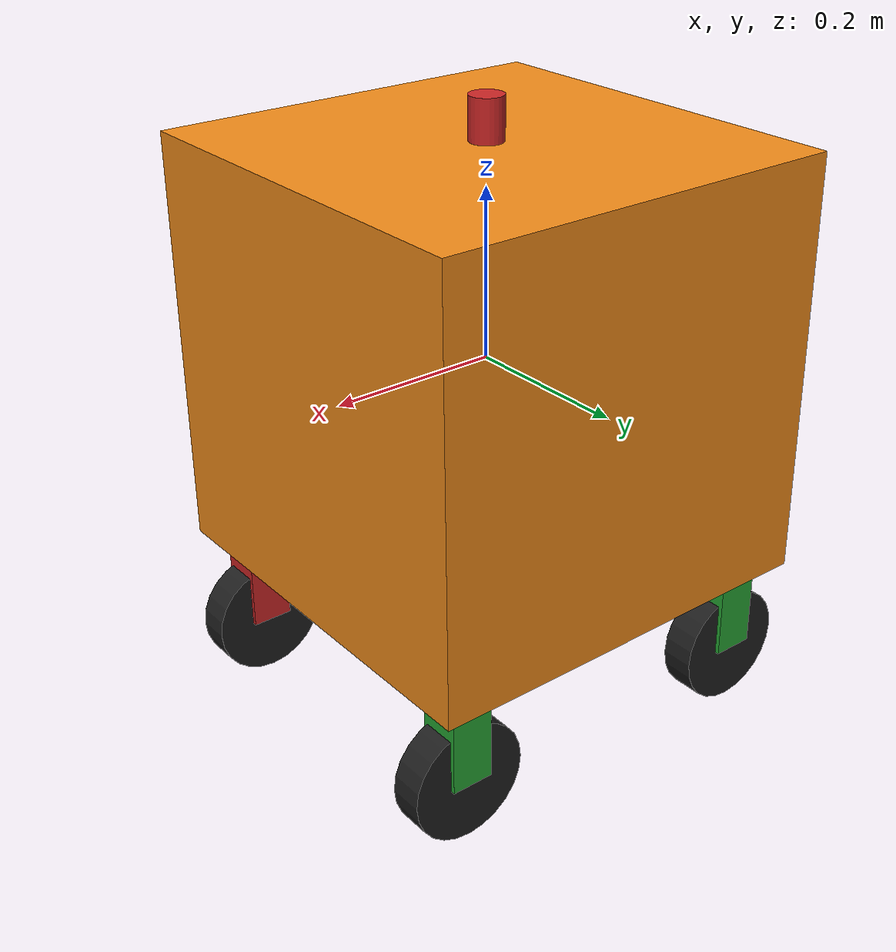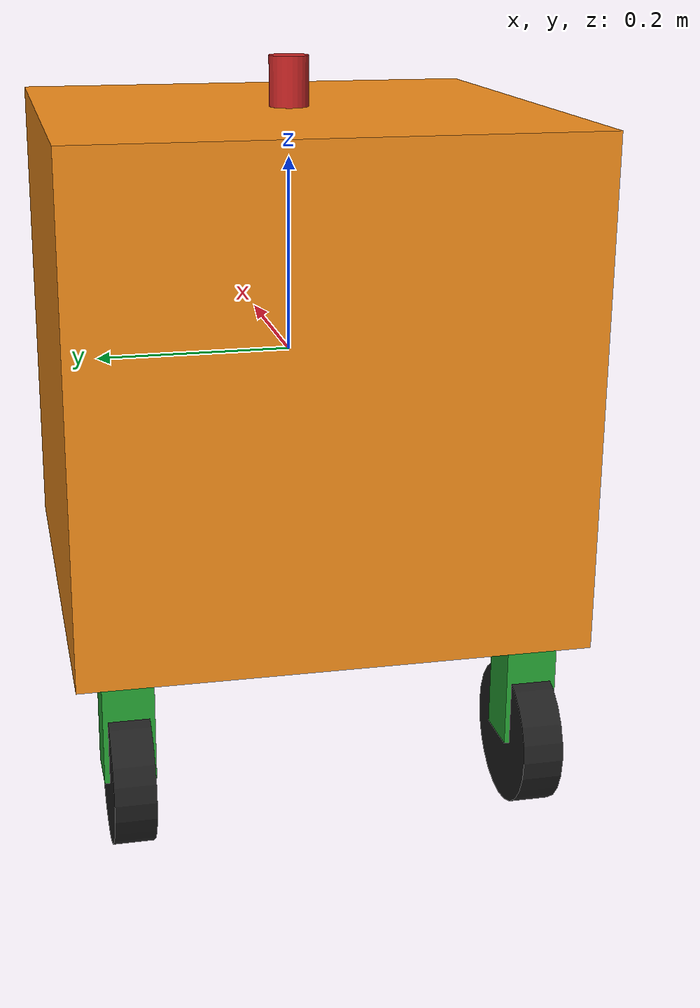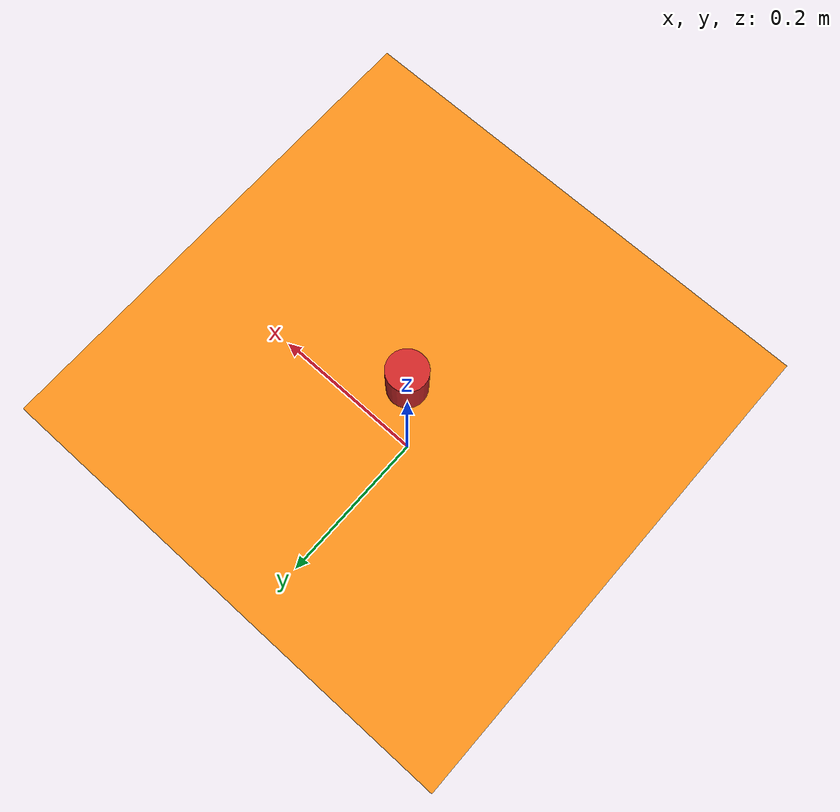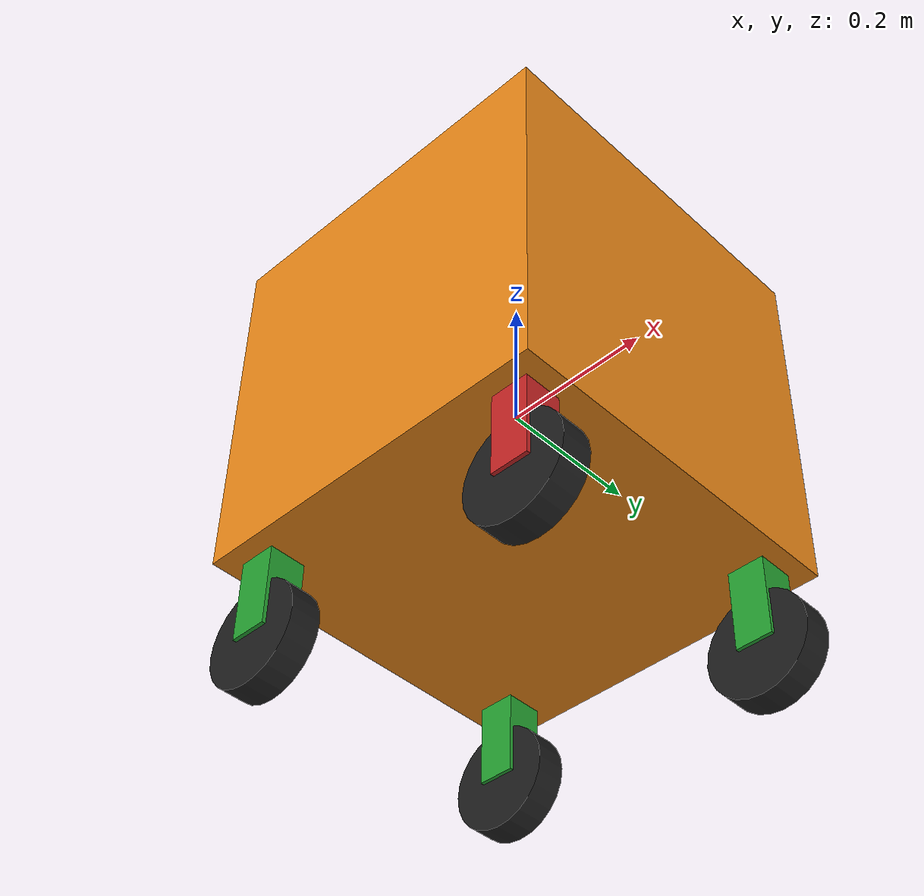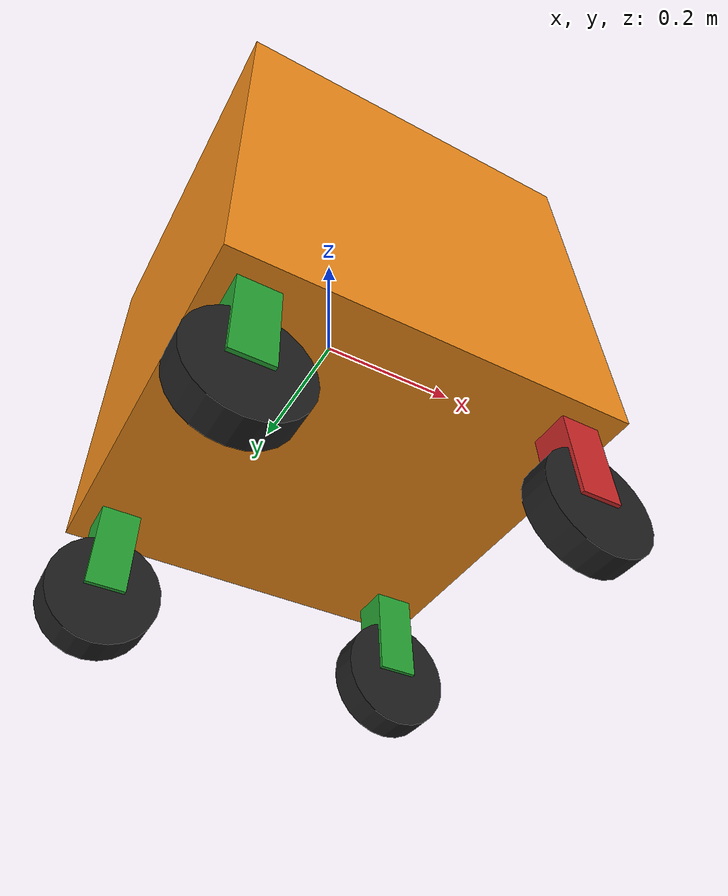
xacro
<?xml version="1.0"?>
<robot name="box_robot" xmlns:xacro="http://www.ros.org/wiki/xacro">

  <xacro:include filename="$(find homewhere)/urdf/color.rviz.xacro" />
  <xacro:include filename="$(find homewhere)/urdf/color.gazebo.xacro" />
  <xacro:include filename="$(find homewhere)/urdf/plugin.xacro" />

  <!-- 0) Properties      -->

  <xacro:property name="base_mass" value="20.0" />
  <xacro:property name="base_size" value="0.5 0.5 0.5" />

  <xacro:property name="steer_mass" value="2.5" />
  <xacro:property name="steer_size" value="0.05 0.05 0.22" />
  <!-- z of steer is 0.1 + radius of wheel -->

  <xacro:property name="wheel_mass" value="2.0" />
  <xacro:property name="wheel_radius" value="0.07" />
  <xacro:property name="wheel_length" value="0.04" />

  <link name="base_link"></link>
  <link name="base_footprint" />
  <joint name="base_joint" type="fixed">
    <parent link="base_footprint" />
    <child link="base_link" />
    <origin xyz="0 0 0" rpy="0 0 0" />
  </joint>

  <!-- 1) Base Link       -->

  <link name="body">
    <visual>
      <geometry>
        <box size="${base_size}" />
      </geometry>
      <material name="orange" />
    </visual>

    <collision>
      <geometry>
        <box size="${base_size}" />
      </geometry>
    </collision>

    <inertial>
      <mass value="${base_mass}" />
      <origin xyz="0 0 0" />
      <inertia
        ixx="0.833" ixy="0.0" ixz="0.0"
        iyy="0.833" iyz="0.0"
        izz="0.833" />
    </inertial>
  </link>

  <joint name="base_to_body" type="fixed">
    <parent link="base_link" />
    <child link="body" />
    <origin xyz="0 0 0" />
  </joint>

  <!-- 2) Wheel       -->

  <xacro:macro name="steering_wheel" params="name color:='green' x y">

    <!-- roll = 1.57 to rotate the wheel upright-->
    <link name="wheel_${name}">
      <visual>
        <geometry>
          <cylinder length="${wheel_length}" radius="${wheel_radius}" />
        </geometry>
        <origin xyz="0 0 0" rpy="1.57 0 0" />
        <material name="black" />
      </visual>

      <collision>
        <geometry>
          <cylinder length="${wheel_length}" radius="${wheel_radius}" />
        </geometry>
        <origin xyz="0 0 0" rpy="1.57 0 0" />
      </collision>

      <inertial>
        <mass value="${wheel_mass}" />
        <origin xyz="0 0 0" />
        <inertia
          ixx="0.0027" ixy="0.0" ixz="0.0"
          iyy="0.0049" iyz="0.0"
          izz="0.0027" />
      </inertial>
    </link>

    <link name="steer_${name}">
      <visual>
        <geometry>
          <box size="${steer_size}" />
        </geometry>
        <origin xyz="0 0 0" rpy="0 0 0" />
        <material name="${color}" />
      </visual>

      <inertial>
        <mass value="${steer_mass}" />
        <origin xyz="0 0 0" />
        <inertia
          ixx="0" ixy="0" ixz="0"
          iyy="0" iyz="0"
          izz="0" />
      </inertial>
    </link>

    <!-- z = base_side/2 + leg/2 -->
    <joint name="steer_${name}_joint" type="continuous">
      <parent link="body" />
      <child link="steer_${name}" />
      <origin xyz="${x} ${y} -0.25" rpy="0 0 0" />
      <axis xyz="0 0 1" />
    </joint>

    <!-- z = -leg/2 -->
    <joint name="wheel_${name}_joint" type="continuous">
      <parent link="steer_${name}" />
      <child link="wheel_${name}" />
      <origin xyz="0 0 -0.11" />
      <axis xyz="0 1 0" />
    </joint>

  </xacro:macro>

  <!-- 3) Lidar       -->

  <link name="base_scan">
    <visual>
      <geometry>
        <cylinder length="0.05" radius="0.02" />
      </geometry>
      <material name="red" />
    </visual>
  </link>

  <joint name="scan_joint" type="fixed">
    <parent link="base_link" />
    <child link="base_scan" />
    <origin xyz="0 0 0.275" rpy="0 0 0" />
  </joint>

  <!-- 4) Imu       -->

  <link name="imu_link">
  </link>

  <joint name="imu_joint" type="fixed">
    <parent link="base_link" />
    <child link="imu_link" />
    <origin xyz="0 0 0" rpy="0 0 0" />
  </joint>

  <xacro:steering_wheel name="front_left" x="0.2" y="0.2" />
  <xacro:steering_wheel name="front_right" color="red" x="0.2" y="-0.2" />
  <xacro:steering_wheel name="rear_left" x="-0.2" y="0.2" />
  <xacro:steering_wheel name="rear_right" x="-0.2" y="-0.2" />

</robot>
